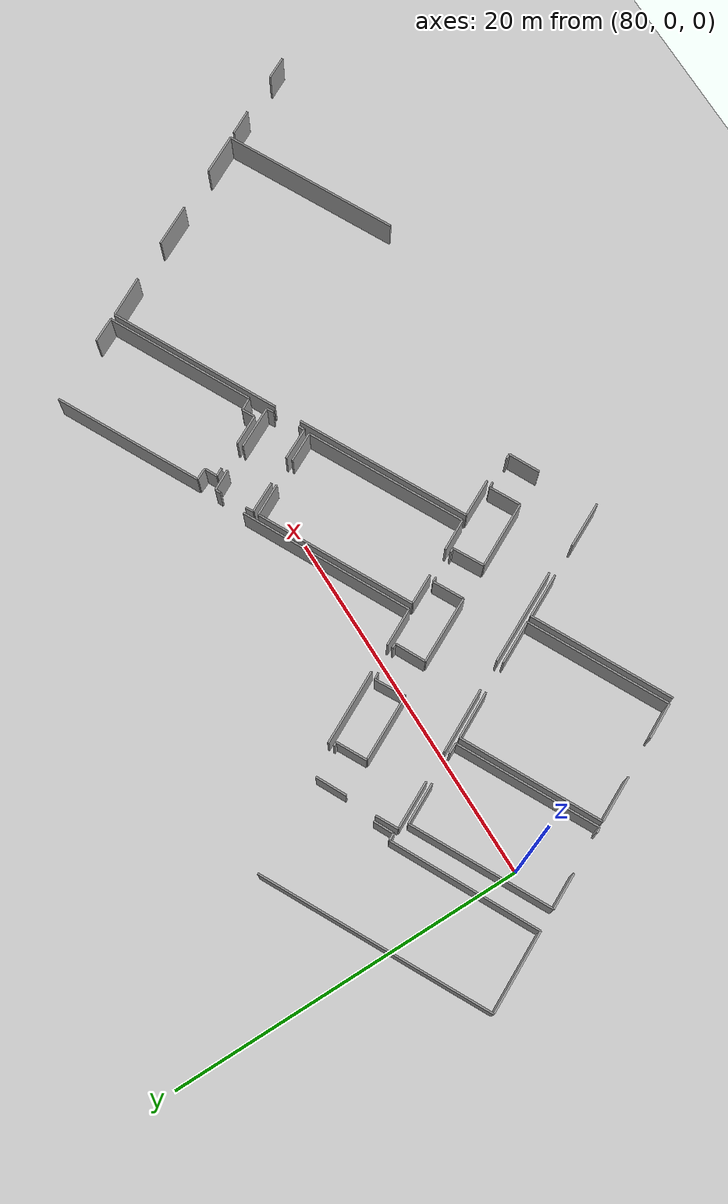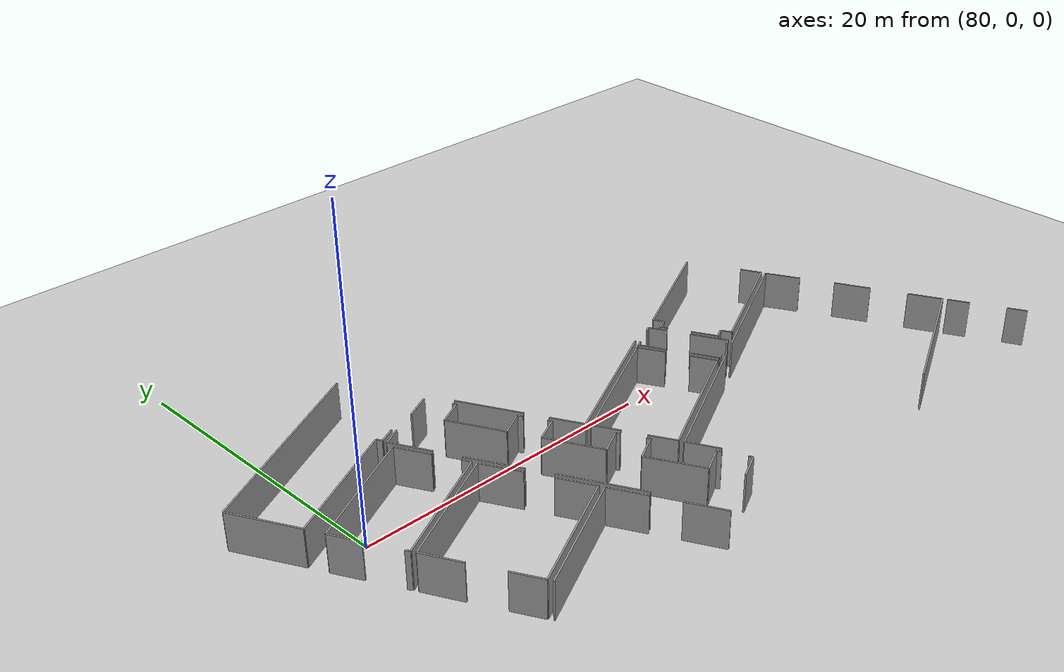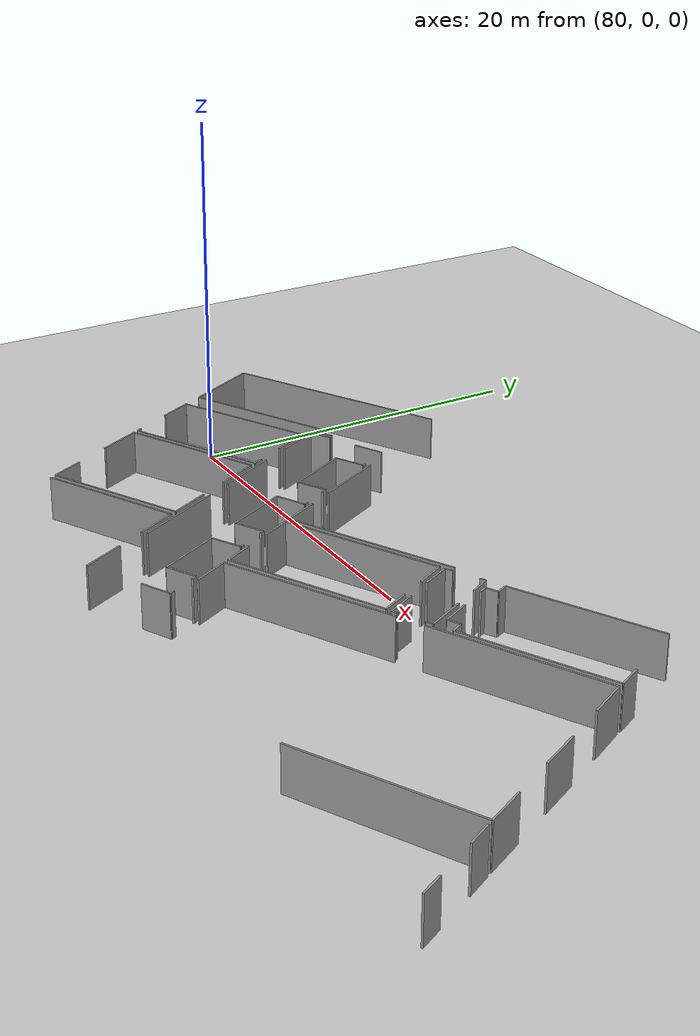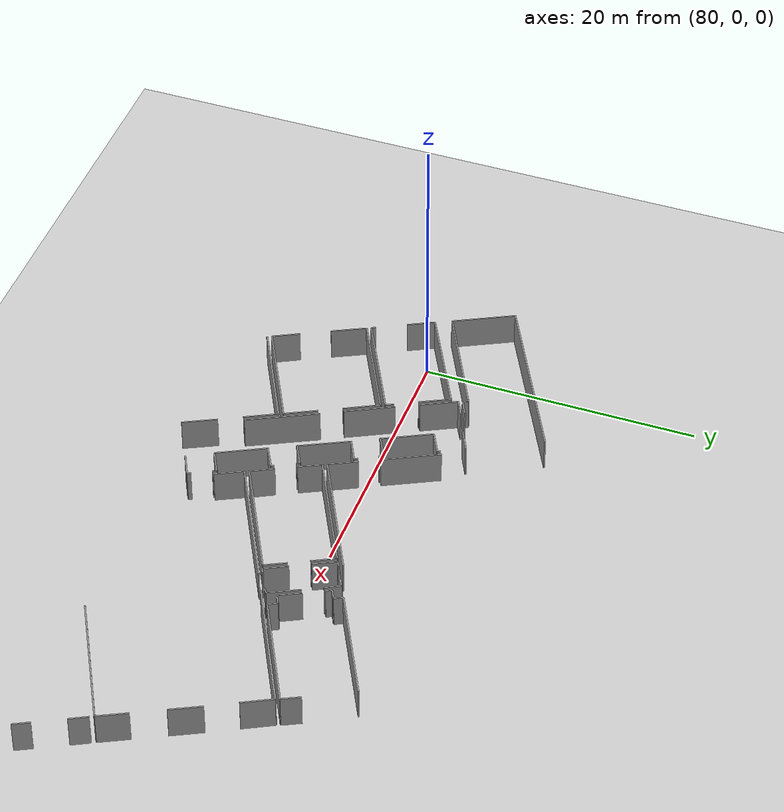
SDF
<sdf version="1.6">
 <world name="default">
  <model name="ground_plane">
   <static>1</static>
   <link name="link">
    <collision name="collision">
     <geometry><plane><normal>0 0 1</normal><size>100 100</size></plane></geometry>
     <surface><friction><ode><mu>100</mu><mu2>50</mu2></ode></friction></surface>
    </collision>
    <visual name="visual">
     <cast_shadows>0</cast_shadows>
     <geometry><plane><normal>0 0 1</normal><size>100 100</size></plane></geometry>
     <material>
      <script><uri>file://media/materials/scripts/gazebo.material</uri><name>Gazebo/Grey</name></script>
     </material>
    </visual>
   </link>
  </model>
  <model name="0510045926_A-40">
   <static>1</static>
   <link name="Wall_34">
    <collision name="Wall_34_Collision">
     <geometry><box><size>9.83773451522 0.1 2.5</size></box></geometry>
     <pose>4.91886725761 0 1.25 0 0 0</pose>
    </collision>
    <visual name="Wall_34_Visual">
     <pose>4.91886725761 0 1.25 0 0 0</pose>
     <geometry><box><size>9.83773451522 0.1 2.5</size></box></geometry>
     <material>
      <script><uri>file://media/materials/scripts/gazebo.material</uri><name>Gazebo/Grey</name></script>
      <ambient>1 1 1 1</ambient>
     </material>
    </visual>
    <pose>236.597120248 -99.109726303 0 0 0 -2.67278706077</pose>
   </link>
   <link name="Wall_35">
    <collision name="Wall_35_Collision">
     <geometry><box><size>2.17369419839 0.1 2.5</size></box></geometry>
     <pose>1.08684709919 0 1.25 0 0 0</pose>
    </collision>
    <visual name="Wall_35_Visual">
     <pose>1.08684709919 0 1.25 0 0 0</pose>
     <geometry><box><size>2.17369419839 0.1 2.5</size></box></geometry>
     <material>
      <script><uri>file://media/materials/scripts/gazebo.material</uri><name>Gazebo/Grey</name></script>
      <ambient>1 1 1 1</ambient>
     </material>
    </visual>
    <pose>227.820792852 -103.554622009 0 0 0 2.04102416253</pose>
   </link>
   <link name="Wall_36">
    <collision name="Wall_36_Collision">
     <geometry><box><size>4.23782411412 0.1 2.5</size></box></geometry>
     <pose>2.11891205706 0 1.25 0 0 0</pose>
    </collision>
    <visual name="Wall_36_Visual">
     <pose>2.11891205706 0 1.25 0 0 0</pose>
     <geometry><box><size>4.23782411412 0.1 2.5</size></box></geometry>
     <material>
      <script><uri>file://media/materials/scripts/gazebo.material</uri><name>Gazebo/Grey</name></script>
      <ambient>1 1 1 1</ambient>
     </material>
    </visual>
    <pose>226.132032009 -100.240812778 0 0 0 2.04039066594</pose>
   </link>
   <link name="Wall_38">
    <collision name="Wall_38_Collision">
     <geometry><box><size>8.47244996552 0.1 2.5</size></box></geometry>
     <pose>4.23622498276 0 1.25 0 0 0</pose>
    </collision>
    <visual name="Wall_38_Visual">
     <pose>4.23622498276 0 1.25 0 0 0</pose>
     <geometry><box><size>8.47244996552 0.1 2.5</size></box></geometry>
     <material>
      <script><uri>file://media/materials/scripts/gazebo.material</uri><name>Gazebo/Grey</name></script>
      <ambient>1 1 1 1</ambient>
     </material>
    </visual>
    <pose>239.384222917 -98.0519979947 0 0 0 0.471231240229</pose>
   </link>
   <link name="Wall_40">
    <collision name="Wall_40_Collision">
     <geometry><box><size>1.40966979622 0.1 2.5</size></box></geometry>
     <pose>0.704834898112 0 1.25 0 0 0</pose>
    </collision>
    <visual name="Wall_40_Visual">
     <pose>0.704834898112 0 1.25 0 0 0</pose>
     <geometry><box><size>1.40966979622 0.1 2.5</size></box></geometry>
     <material>
      <script><uri>file://media/materials/scripts/gazebo.material</uri><name>Gazebo/Grey</name></script>
      <ambient>1 1 1 1</ambient>
     </material>
    </visual>
    <pose>248.636489977 -97.4803627295 0 0 0 -1.10787347206</pose>
   </link>
   <link name="Wall_41">
    <collision name="Wall_41_Collision">
     <geometry><box><size>8.49312175297 0.1 2.5</size></box></geometry>
     <pose>4.24656087648 0 1.25 0 0 0</pose>
    </collision>
    <visual name="Wall_41_Visual">
     <pose>4.24656087648 0 1.25 0 0 0</pose>
     <geometry><box><size>8.49312175297 0.1 2.5</size></box></geometry>
     <material>
      <script><uri>file://media/materials/scripts/gazebo.material</uri><name>Gazebo/Grey</name></script>
      <ambient>1 1 1 1</ambient>
     </material>
    </visual>
    <pose>249.265999505 -98.7416662965 0 0 0 -2.67217094281</pose>
   </link>
   <link name="Wall_42">
    <collision name="Wall_42_Collision">
     <geometry><box><size>0.716394901711 0.1 2.5</size></box></geometry>
     <pose>0.358197450855 0 1.25 0 0 0</pose>
    </collision>
    <visual name="Wall_42_Visual">
     <pose>0.358197450855 0 1.25 0 0 0</pose>
     <geometry><box><size>0.716394901711 0.1 2.5</size></box></geometry>
     <material>
      <script><uri>file://media/materials/scripts/gazebo.material</uri><name>Gazebo/Grey</name></script>
      <ambient>1 1 1 1</ambient>
     </material>
    </visual>
    <pose>241.691578406 -102.583705095 0 0 0 2.07359296833</pose>
   </link>
   <link name="Wall_43">
    <collision name="Wall_43_Collision">
     <geometry><box><size>0.722833492446 0.1 2.5</size></box></geometry>
     <pose>0.361416746223 0 1.25 0 0 0</pose>
    </collision>
    <visual name="Wall_43_Visual">
     <pose>0.361416746223 0 1.25 0 0 0</pose>
     <geometry><box><size>0.722833492446 0.1 2.5</size></box></geometry>
     <material>
      <script><uri>file://media/materials/scripts/gazebo.material</uri><name>Gazebo/Grey</name></script>
      <ambient>1 1 1 1</ambient>
     </material>
    </visual>
    <pose>241.346363504 -101.955972408 0 0 0 -2.66475278341</pose>
   </link>
   <link name="Wall_44">
    <collision name="Wall_44_Collision">
     <geometry><box><size>1.71059654186 0.1 2.5</size></box></geometry>
     <pose>0.855298270928 0 1.25 0 0 0</pose>
    </collision>
    <visual name="Wall_44_Visual">
     <pose>0.855298270928 0 1.25 0 0 0</pose>
     <geometry><box><size>1.71059654186 0.1 2.5</size></box></geometry>
     <material>
      <script><uri>file://media/materials/scripts/gazebo.material</uri><name>Gazebo/Grey</name></script>
      <ambient>1 1 1 1</ambient>
     </material>
    </visual>
    <pose>240.704162251 -102.287734083 0 0 0 2.04546021432</pose>
   </link>
   <link name="Wall_45">
    <collision name="Wall_45_Collision">
     <geometry><box><size>0.469220516301 0.1 2.5</size></box></geometry>
     <pose>0.234610258151 0 1.25 0 0 0</pose>
    </collision>
    <visual name="Wall_45_Visual">
     <pose>0.234610258151 0 1.25 0 0 0</pose>
     <geometry><box><size>0.469220516301 0.1 2.5</size></box></geometry>
     <material>
      <script><uri>file://media/materials/scripts/gazebo.material</uri><name>Gazebo/Grey</name></script>
      <ambient>1 1 1 1</ambient>
     </material>
    </visual>
    <pose>239.22938388 -99.4008744598 0 0 0 2.06081729664</pose>
   </link>
   <link name="Wall_46">
    <collision name="Wall_46_Collision">
     <geometry><box><size>0.734011743152 0.1 2.5</size></box></geometry>
     <pose>0.367005871576 0 1.25 0 0 0</pose>
    </collision>
    <visual name="Wall_46_Visual">
     <pose>0.367005871576 0 1.25 0 0 0</pose>
     <geometry><box><size>0.734011743152 0.1 2.5</size></box></geometry>
     <material>
      <script><uri>file://media/materials/scripts/gazebo.material</uri><name>Gazebo/Grey</name></script>
      <ambient>1 1 1 1</ambient>
     </material>
    </visual>
    <pose>239.008547876 -98.9868704111 0 0 0 0.460863824048</pose>
   </link>
   <link name="Wall_47">
    <collision name="Wall_47_Collision">
     <geometry><box><size>0.670512770793 0.1 2.5</size></box></geometry>
     <pose>0.335256385397 0 1.25 0 0 0</pose>
    </collision>
    <visual name="Wall_47_Visual">
     <pose>0.335256385397 0 1.25 0 0 0</pose>
     <geometry><box><size>0.670512770793 0.1 2.5</size></box></geometry>
     <material>
      <script><uri>file://media/materials/scripts/gazebo.material</uri><name>Gazebo/Grey</name></script>
      <ambient>1 1 1 1</ambient>
     </material>
    </visual>
    <pose>239.665979198 -98.6604392606 0 0 0 2.00447323788</pose>
   </link>
   <link name="Wall_48">
    <collision name="Wall_48_Collision">
     <geometry><box><size>9.14189428789 0.1 2.5</size></box></geometry>
     <pose>4.57094714394 0 1.25 0 0 0</pose>
    </collision>
    <visual name="Wall_48_Visual">
     <pose>4.57094714394 0 1.25 0 0 0</pose>
     <geometry><box><size>9.14189428789 0.1 2.5</size></box></geometry>
     <material>
      <script><uri>file://media/materials/scripts/gazebo.material</uri><name>Gazebo/Grey</name></script>
      <ambient>1 1 1 1</ambient>
     </material>
    </visual>
    <pose>227.974870386 -103.85846189 0 0 0 0.471346451052</pose>
   </link>
   <link name="Wall_49">
    <collision name="Wall_49_Collision">
     <geometry><box><size>1.81399217768 0.1 2.5</size></box></geometry>
     <pose>0.906996088841 0 1.25 0 0 0</pose>
    </collision>
    <visual name="Wall_49_Visual">
     <pose>0.906996088841 0 1.25 0 0 0</pose>
     <geometry><box><size>1.81399217768 0.1 2.5</size></box></geometry>
     <material>
      <script><uri>file://media/materials/scripts/gazebo.material</uri><name>Gazebo/Grey</name></script>
      <ambient>1 1 1 1</ambient>
     </material>
    </visual>
    <pose>236.119911412 -99.7072526859 0 0 0 -1.09237948259</pose>
   </link>
   <link name="Wall_50">
    <collision name="Wall_50_Collision">
     <geometry><box><size>1.68029689895 0.1 2.5</size></box></geometry>
     <pose>0.840148449477 0 1.25 0 0 0</pose>
    </collision>
    <visual name="Wall_50_Visual">
     <pose>0.840148449477 0 1.25 0 0 0</pose>
     <geometry><box><size>1.68029689895 0.1 2.5</size></box></geometry>
     <material>
      <script><uri>file://media/materials/scripts/gazebo.material</uri><name>Gazebo/Grey</name></script>
      <ambient>1 1 1 1</ambient>
     </material>
    </visual>
    <pose>237.647995025 -102.697930614 0 0 0 -1.10721627623</pose>
   </link>
   <link name="Wall_51">
    <collision name="Wall_51_Collision">
     <geometry><box><size>9.12429454102 0.1 2.5</size></box></geometry>
     <pose>4.56214727051 0 1.25 0 0 0</pose>
    </collision>
    <visual name="Wall_51_Visual">
     <pose>4.56214727051 0 1.25 0 0 0</pose>
     <geometry><box><size>9.12429454102 0.1 2.5</size></box></geometry>
     <material>
      <script><uri>file://media/materials/scripts/gazebo.material</uri><name>Gazebo/Grey</name></script>
      <ambient>1 1 1 1</ambient>
     </material>
    </visual>
    <pose>238.399345107 -104.200884613 0 0 0 -2.66754391669</pose>
   </link>
   <link name="Wall_52">
    <collision name="Wall_52_Collision">
     <geometry><box><size>1.77359968853 0.1 2.5</size></box></geometry>
     <pose>0.886799844267 0 1.25 0 0 0</pose>
    </collision>
    <visual name="Wall_52_Visual">
     <pose>0.886799844267 0 1.25 0 0 0</pose>
     <geometry><box><size>1.77359968853 0.1 2.5</size></box></geometry>
     <material>
      <script><uri>file://media/materials/scripts/gazebo.material</uri><name>Gazebo/Grey</name></script>
      <ambient>1 1 1 1</ambient>
     </material>
    </visual>
    <pose>230.281210537 -108.366054714 0 0 0 2.05377447692</pose>
   </link>
   <link name="Wall_53">
    <collision name="Wall_53_Collision">
     <geometry><box><size>1.72831520117 0.1 2.5</size></box></geometry>
     <pose>0.864157600586 0 1.25 0 0 0</pose>
    </collision>
    <visual name="Wall_53_Visual">
     <pose>0.864157600586 0 1.25 0 0 0</pose>
     <geometry><box><size>1.72831520117 0.1 2.5</size></box></geometry>
     <material>
      <script><uri>file://media/materials/scripts/gazebo.material</uri><name>Gazebo/Grey</name></script>
      <ambient>1 1 1 1</ambient>
     </material>
    </visual>
    <pose>228.748304068 -105.404060083 0 0 0 2.03477234301</pose>
   </link>
   <link name="Wall_54">
    <collision name="Wall_54_Collision">
     <geometry><box><size>1.78814858928 0.1 2.5</size></box></geometry>
     <pose>0.894074294638 0 1.25 0 0 0</pose>
    </collision>
    <visual name="Wall_54_Visual">
     <pose>0.894074294638 0 1.25 0 0 0</pose>
     <geometry><box><size>1.78814858928 0.1 2.5</size></box></geometry>
     <material>
      <script><uri>file://media/materials/scripts/gazebo.material</uri><name>Gazebo/Grey</name></script>
      <ambient>1 1 1 1</ambient>
     </material>
    </visual>
    <pose>238.706484837 -104.09605097 0 0 0 2.03120626301</pose>
   </link>
   <link name="Wall_55">
    <collision name="Wall_55_Collision">
     <geometry><box><size>1.75727774892 0.1 2.5</size></box></geometry>
     <pose>0.87863887446 0 1.25 0 0 0</pose>
    </collision>
    <visual name="Wall_55_Visual">
     <pose>0.87863887446 0 1.25 0 0 0</pose>
     <geometry><box><size>1.75727774892 0.1 2.5</size></box></geometry>
     <material>
      <script><uri>file://media/materials/scripts/gazebo.material</uri><name>Gazebo/Grey</name></script>
      <ambient>1 1 1 1</ambient>
     </material>
    </visual>
    <pose>237.183477913 -101.153855429 0 0 0 2.03024499406</pose>
   </link>
   <link name="Wall_56">
    <collision name="Wall_56_Collision">
     <geometry><box><size>0.436196674914 0.1 2.5</size></box></geometry>
     <pose>0.218098337457 0 1.25 0 0 0</pose>
    </collision>
    <visual name="Wall_56_Visual">
     <pose>0.218098337457 0 1.25 0 0 0</pose>
     <geometry><box><size>0.436196674914 0.1 2.5</size></box></geometry>
     <material>
      <script><uri>file://media/materials/scripts/gazebo.material</uri><name>Gazebo/Grey</name></script>
      <ambient>1 1 1 1</ambient>
     </material>
    </visual>
    <pose>236.404206037 -99.5788124354 0 0 0 0.544411495033</pose>
   </link>
   <link name="Wall_57">
    <collision name="Wall_57_Collision">
     <geometry><box><size>0.32457521192 0.1 2.5</size></box></geometry>
     <pose>0.16228760596 0 1.25 0 0 0</pose>
    </collision>
    <visual name="Wall_57_Visual">
     <pose>0.16228760596 0 1.25 0 0 0</pose>
     <geometry><box><size>0.32457521192 0.1 2.5</size></box></geometry>
     <material>
      <script><uri>file://media/materials/scripts/gazebo.material</uri><name>Gazebo/Grey</name></script>
      <ambient>1 1 1 1</ambient>
     </material>
    </visual>
    <pose>238.122665516 -98.6784615092 0 0 0 0.434264885081</pose>
   </link>
   <link name="Wall_58">
    <collision name="Wall_58_Collision">
     <geometry><box><size>1.1998915964 0.1 2.5</size></box></geometry>
     <pose>0.599945798202 0 1.25 0 0 0</pose>
    </collision>
    <visual name="Wall_58_Visual">
     <pose>0.599945798202 0 1.25 0 0 0</pose>
     <geometry><box><size>1.1998915964 0.1 2.5</size></box></geometry>
     <material>
      <script><uri>file://media/materials/scripts/gazebo.material</uri><name>Gazebo/Grey</name></script>
      <ambient>1 1 1 1</ambient>
     </material>
    </visual>
    <pose>238.417113521 -98.541898555 0 0 0 -1.0795199371</pose>
   </link>
   <link name="Wall_59">
    <collision name="Wall_59_Collision">
     <geometry><box><size>2.37911633606 0.1 2.5</size></box></geometry>
     <pose>1.18955816803 0 1.25 0 0 0</pose>
    </collision>
    <visual name="Wall_59_Visual">
     <pose>1.18955816803 0 1.25 0 0 0</pose>
     <geometry><box><size>2.37911633606 0.1 2.5</size></box></geometry>
     <material>
      <script><uri>file://media/materials/scripts/gazebo.material</uri><name>Gazebo/Grey</name></script>
      <ambient>1 1 1 1</ambient>
     </material>
    </visual>
    <pose>239.655825819 -100.932004087 0 0 0 -1.10614671412</pose>
   </link>
   <link name="Wall_60">
    <collision name="Wall_60_Collision">
     <geometry><box><size>0.398241638076 0.1 2.5</size></box></geometry>
     <pose>0.199120819038 0 1.25 0 0 0</pose>
    </collision>
    <visual name="Wall_60_Visual">
     <pose>0.199120819038 0 1.25 0 0 0</pose>
     <geometry><box><size>0.398241638076 0.1 2.5</size></box></geometry>
     <material>
      <script><uri>file://media/materials/scripts/gazebo.material</uri><name>Gazebo/Grey</name></script>
      <ambient>1 1 1 1</ambient>
     </material>
    </visual>
    <pose>240.721930665 -103.058883255 0 0 0 -2.5946144367</pose>
   </link>
   <link name="Wall_61">
    <collision name="Wall_61_Collision">
     <geometry><box><size>0.351402747105 0.1 2.5</size></box></geometry>
     <pose>0.175701373552 0 1.25 0 0 0</pose>
    </collision>
    <visual name="Wall_61_Visual">
     <pose>0.175701373552 0 1.25 0 0 0</pose>
     <geometry><box><size>0.351402747105 0.1 2.5</size></box></geometry>
     <material>
      <script><uri>file://media/materials/scripts/gazebo.material</uri><name>Gazebo/Grey</name></script>
      <ambient>1 1 1 1</ambient>
     </material>
    </visual>
    <pose>239.028854635 -103.956188168 0 0 0 -2.73224296266</pose>
   </link>
   <link name="Wall_62">
    <collision name="Wall_62_Collision">
     <geometry><box><size>9.90446214261 0.1 2.5</size></box></geometry>
     <pose>4.95223107131 0 1.25 0 0 0</pose>
    </collision>
    <visual name="Wall_62_Visual">
     <pose>4.95223107131 0 1.25 0 0 0</pose>
     <geometry><box><size>9.90446214261 0.1 2.5</size></box></geometry>
     <material>
      <script><uri>file://media/materials/scripts/gazebo.material</uri><name>Gazebo/Grey</name></script>
      <ambient>1 1 1 1</ambient>
     </material>
    </visual>
    <pose>230.410666125 -108.676494292 0 0 0 0.473183573752</pose>
   </link>
   <link name="Wall_63">
    <collision name="Wall_63_Collision">
     <geometry><box><size>9.84067283342 0.1 2.5</size></box></geometry>
     <pose>4.92033641671 0 1.25 0 0 0</pose>
    </collision>
    <visual name="Wall_63_Visual">
     <pose>4.92033641671 0 1.25 0 0 0</pose>
     <geometry><box><size>9.84067283342 0.1 2.5</size></box></geometry>
     <material>
      <script><uri>file://media/materials/scripts/gazebo.material</uri><name>Gazebo/Grey</name></script>
      <ambient>1 1 1 1</ambient>
     </material>
    </visual>
    <pose>240.592475077 -103.473902642 0 0 0 0.468538730148</pose>
   </link>
   <link name="Wall_64">
    <collision name="Wall_64_Collision">
     <geometry><box><size>2.31981414035 0.1 2.5</size></box></geometry>
     <pose>1.15990707017 0 1.25 0 0 0</pose>
    </collision>
    <visual name="Wall_64_Visual">
     <pose>1.15990707017 0 1.25 0 0 0</pose>
     <geometry><box><size>2.31981414035 0.1 2.5</size></box></geometry>
     <material>
      <script><uri>file://media/materials/scripts/gazebo.material</uri><name>Gazebo/Grey</name></script>
      <ambient>1 1 1 1</ambient>
     </material>
    </visual>
    <pose>249.37260999 -99.030022274 0 0 0 -1.08835688156</pose>
   </link>
   <link name="Wall_65">
    <collision name="Wall_65_Collision">
     <geometry><box><size>2.37503261162 0.1 2.5</size></box></geometry>
     <pose>1.18751630581 0 1.25 0 0 0</pose>
    </collision>
    <visual name="Wall_65_Visual">
     <pose>1.18751630581 0 1.25 0 0 0</pose>
     <geometry><box><size>2.37503261162 0.1 2.5</size></box></geometry>
     <material>
      <script><uri>file://media/materials/scripts/gazebo.material</uri><name>Gazebo/Grey</name></script>
      <ambient>1 1 1 1</ambient>
     </material>
    </visual>
    <pose>251.517511407 -103.118788194 0 0 0 -1.10528465342</pose>
   </link>
   <link name="Wall_66">
    <collision name="Wall_66_Collision">
     <geometry><box><size>2.24947814664 0.1 2.5</size></box></geometry>
     <pose>1.12473907332 0 1.25 0 0 0</pose>
    </collision>
    <visual name="Wall_66_Visual">
     <pose>1.12473907332 0 1.25 0 0 0</pose>
     <geometry><box><size>2.24947814664 0.1 2.5</size></box></geometry>
     <material>
      <script><uri>file://media/materials/scripts/gazebo.material</uri><name>Gazebo/Grey</name></script>
      <ambient>1 1 1 1</ambient>
     </material>
    </visual>
    <pose>253.672566203 -107.397676145 0 0 0 -1.10629082539</pose>
   </link>
   <link name="Wall_67">
    <collision name="Wall_67_Collision">
     <geometry><box><size>9.91867469902 0.1 2.5</size></box></geometry>
     <pose>4.95933734951 0 1.25 0 0 0</pose>
    </collision>
    <visual name="Wall_67_Visual">
     <pose>4.95933734951 0 1.25 0 0 0</pose>
     <geometry><box><size>9.91867469902 0.1 2.5</size></box></geometry>
     <material>
      <script><uri>file://media/materials/scripts/gazebo.material</uri><name>Gazebo/Grey</name></script>
      <ambient>1 1 1 1</ambient>
     </material>
    </visual>
    <pose>254.680289117 -109.408806788 0 0 0 -2.66942993657</pose>
   </link>
   <link name="Wall_71">
    <collision name="Wall_71_Collision">
     <geometry><box><size>2.12699288955 0.1 2.5</size></box></geometry>
     <pose>1.06349644477 0 1.25 0 0 0</pose>
    </collision>
    <visual name="Wall_71_Visual">
     <pose>1.06349644477 0 1.25 0 0 0</pose>
     <geometry><box><size>2.12699288955 0.1 2.5</size></box></geometry>
     <material>
      <script><uri>file://media/materials/scripts/gazebo.material</uri><name>Gazebo/Grey</name></script>
      <ambient>1 1 1 1</ambient>
     </material>
    </visual>
    <pose>231.364322294 -110.577714601 0 0 0 2.03572482318</pose>
   </link>
   <link name="Wall_73">
    <collision name="Wall_73_Collision">
     <geometry><box><size>1.41280884855 0.1 2.5</size></box></geometry>
     <pose>0.706404424275 0 1.25 0 0 0</pose>
    </collision>
    <visual name="Wall_73_Visual">
     <pose>0.706404424275 0 1.25 0 0 0</pose>
     <geometry><box><size>1.41280884855 0.1 2.5</size></box></geometry>
     <material>
      <script><uri>file://media/materials/scripts/gazebo.material</uri><name>Gazebo/Grey</name></script>
      <ambient>1 1 1 1</ambient>
     </material>
    </visual>
    <pose>254.82751312 -109.692593744 0 0 0 -1.09083708201</pose>
   </link>
   <link name="Wall_74">
    <collision name="Wall_74_Collision">
     <geometry><box><size>1.28732880304 0.1 2.5</size></box></geometry>
     <pose>0.64366440152 0 1.25 0 0 0</pose>
    </collision>
    <visual name="Wall_74_Visual">
     <pose>0.64366440152 0 1.25 0 0 0</pose>
     <geometry><box><size>1.28732880304 0.1 2.5</size></box></geometry>
     <material>
      <script><uri>file://media/materials/scripts/gazebo.material</uri><name>Gazebo/Grey</name></script>
      <ambient>1 1 1 1</ambient>
     </material>
    </visual>
    <pose>256.543434254 -113.024425224 0 0 0 -1.1000941611</pose>
   </link>
   <link name="Wall_150">
    <collision name="Wall_150_Collision">
     <geometry><box><size>13.34827038 0.1 2.5</size></box></geometry>
     <pose>6.67413518998 0 1.25 0 0 0</pose>
    </collision>
    <visual name="Wall_150_Visual">
     <pose>6.67413518998 0 1.25 0 0 0</pose>
     <geometry><box><size>13.34827038 0.1 2.5</size></box></geometry>
     <material>
      <script><uri>file://media/materials/scripts/gazebo.material</uri><name>Gazebo/Grey</name></script>
      <ambient>1 1 1 1</ambient>
     </material>
    </visual>
    <pose>208.724824378 -96.2106826244 0 0 0 0.475324333573</pose>
   </link>
   <link name="Wall_155">
    <collision name="Wall_155_Collision">
     <geometry><box><size>1.14884504645 0.1 2.5</size></box></geometry>
     <pose>0.574422523226 0 1.25 0 0 0</pose>
    </collision>
    <visual name="Wall_155_Visual">
     <pose>0.574422523226 0 1.25 0 0 0</pose>
     <geometry><box><size>1.14884504645 0.1 2.5</size></box></geometry>
     <material>
      <script><uri>file://media/materials/scripts/gazebo.material</uri><name>Gazebo/Grey</name></script>
      <ambient>1 1 1 1</ambient>
     </material>
    </visual>
    <pose>219.714080834 -96.2987631915 0 0 0 -2.68634405657</pose>
   </link>
   <link name="Wall_156">
    <collision name="Wall_156_Collision">
     <geometry><box><size>0.403330300285 0.1 2.5</size></box></geometry>
     <pose>0.201665150143 0 1.25 0 0 0</pose>
    </collision>
    <visual name="Wall_156_Visual">
     <pose>0.201665150143 0 1.25 0 0 0</pose>
     <geometry><box><size>0.403330300285 0.1 2.5</size></box></geometry>
     <material>
      <script><uri>file://media/materials/scripts/gazebo.material</uri><name>Gazebo/Grey</name></script>
      <ambient>1 1 1 1</ambient>
     </material>
    </visual>
    <pose>218.682243643 -96.803893821 0 0 0 2.03472538808</pose>
   </link>
   <link name="Wall_157">
    <collision name="Wall_157_Collision">
     <geometry><box><size>8.60506984182 0.1 2.5</size></box></geometry>
     <pose>4.30253492091 0 1.25 0 0 0</pose>
    </collision>
    <visual name="Wall_157_Visual">
     <pose>4.30253492091 0 1.25 0 0 0</pose>
     <geometry><box><size>8.60506984182 0.1 2.5</size></box></geometry>
     <material>
      <script><uri>file://media/materials/scripts/gazebo.material</uri><name>Gazebo/Grey</name></script>
      <ambient>1 1 1 1</ambient>
     </material>
    </visual>
    <pose>218.501767323 -96.4431950147 0 0 0 -2.67463384209</pose>
   </link>
   <link name="Wall_158">
    <collision name="Wall_158_Collision">
     <geometry><box><size>4.60897900316 0.1 2.5</size></box></geometry>
     <pose>2.30448950158 0 1.25 0 0 0</pose>
    </collision>
    <visual name="Wall_158_Visual">
     <pose>2.30448950158 0 1.25 0 0 0</pose>
     <geometry><box><size>4.60897900316 0.1 2.5</size></box></geometry>
     <material>
      <script><uri>file://media/materials/scripts/gazebo.material</uri><name>Gazebo/Grey</name></script>
      <ambient>1 1 1 1</ambient>
     </material>
    </visual>
    <pose>210.81794356 -100.316963124 0 0 0 2.04220240081</pose>
   </link>
   <link name="Wall_159">
    <collision name="Wall_159_Collision">
     <geometry><box><size>8.23695820155 0.1 2.5</size></box></geometry>
     <pose>4.11847910078 0 1.25 0 0 0</pose>
    </collision>
    <visual name="Wall_159_Visual">
     <pose>4.11847910078 0 1.25 0 0 0</pose>
     <geometry><box><size>8.23695820155 0.1 2.5</size></box></geometry>
     <material>
      <script><uri>file://media/materials/scripts/gazebo.material</uri><name>Gazebo/Grey</name></script>
      <ambient>1 1 1 1</ambient>
     </material>
    </visual>
    <pose>211.365464549 -101.439419227 0 0 0 0.473694544117</pose>
   </link>
   <link name="Wall_160">
    <collision name="Wall_160_Collision">
     <geometry><box><size>2.31628292386 0.1 2.5</size></box></geometry>
     <pose>1.15814146193 0 1.25 0 0 0</pose>
    </collision>
    <visual name="Wall_160_Visual">
     <pose>1.15814146193 0 1.25 0 0 0</pose>
     <geometry><box><size>2.31628292386 0.1 2.5</size></box></geometry>
     <material>
      <script><uri>file://media/materials/scripts/gazebo.material</uri><name>Gazebo/Grey</name></script>
      <ambient>1 1 1 1</ambient>
     </material>
    </visual>
    <pose>218.695443036 -97.6819073123 0 0 0 -1.10014040282</pose>
   </link>
   <link name="Wall_161">
    <collision name="Wall_161_Collision">
     <geometry><box><size>0.592872599715 0.1 2.5</size></box></geometry>
     <pose>0.296436299858 0 1.25 0 0 0</pose>
    </collision>
    <visual name="Wall_161_Visual">
     <pose>0.296436299858 0 1.25 0 0 0</pose>
     <geometry><box><size>0.592872599715 0.1 2.5</size></box></geometry>
     <material>
      <script><uri>file://media/materials/scripts/gazebo.material</uri><name>Gazebo/Grey</name></script>
      <ambient>1 1 1 1</ambient>
     </material>
    </visual>
    <pose>220.547927124 -101.301333266 0 0 0 -1.12361601505</pose>
   </link>
   <link name="Wall_162">
    <collision name="Wall_162_Collision">
     <geometry><box><size>8.19861379299 0.1 2.5</size></box></geometry>
     <pose>4.09930689649 0 1.25 0 0 0</pose>
    </collision>
    <visual name="Wall_162_Visual">
     <pose>4.09930689649 0 1.25 0 0 0</pose>
     <geometry><box><size>8.19861379299 0.1 2.5</size></box></geometry>
     <material>
      <script><uri>file://media/materials/scripts/gazebo.material</uri><name>Gazebo/Grey</name></script>
      <ambient>1 1 1 1</ambient>
     </material>
    </visual>
    <pose>220.804299956 -101.835908696 0 0 0 -2.669014238</pose>
   </link>
   <link name="Wall_163">
    <collision name="Wall_163_Collision">
     <geometry><box><size>0.31928231722 0.1 2.5</size></box></geometry>
     <pose>0.15964115861 0 1.25 0 0 0</pose>
    </collision>
    <visual name="Wall_163_Visual">
     <pose>0.15964115861 0 1.25 0 0 0</pose>
     <geometry><box><size>0.31928231722 0.1 2.5</size></box></geometry>
     <material>
      <script><uri>file://media/materials/scripts/gazebo.material</uri><name>Gazebo/Grey</name></script>
      <ambient>1 1 1 1</ambient>
     </material>
    </visual>
    <pose>213.504273938 -105.567783327 0 0 0 2.14953789412</pose>
   </link>
   <link name="Wall_164">
    <collision name="Wall_164_Collision">
     <geometry><box><size>2.02020700226 0.1 2.5</size></box></geometry>
     <pose>1.01010350113 0 1.25 0 0 0</pose>
    </collision>
    <visual name="Wall_164_Visual">
     <pose>1.01010350113 0 1.25 0 0 0</pose>
     <geometry><box><size>2.02020700226 0.1 2.5</size></box></geometry>
     <material>
      <script><uri>file://media/materials/scripts/gazebo.material</uri><name>Gazebo/Grey</name></script>
      <ambient>1 1 1 1</ambient>
     </material>
    </visual>
    <pose>212.279776372 -103.240882583 0 0 0 2.04045645044</pose>
   </link>
   <link name="Wall_165">
    <collision name="Wall_165_Collision">
     <geometry><box><size>8.179131028 0.1 2.5</size></box></geometry>
     <pose>4.089565514 0 1.25 0 0 0</pose>
    </collision>
    <visual name="Wall_165_Visual">
     <pose>4.089565514 0 1.25 0 0 0</pose>
     <geometry><box><size>8.179131028 0.1 2.5</size></box></geometry>
     <material>
      <script><uri>file://media/materials/scripts/gazebo.material</uri><name>Gazebo/Grey</name></script>
      <ambient>1 1 1 1</ambient>
     </material>
    </visual>
    <pose>213.640836892 -105.851824118 0 0 0 0.46954622206</pose>
   </link>
   <link name="Wall_166">
    <collision name="Wall_166_Collision">
     <geometry><box><size>2.66313564546 0.1 2.5</size></box></geometry>
     <pose>1.33156782273 0 1.25 0 0 0</pose>
    </collision>
    <visual name="Wall_166_Visual">
     <pose>1.33156782273 0 1.25 0 0 0</pose>
     <geometry><box><size>2.66313564546 0.1 2.5</size></box></geometry>
     <material>
      <script><uri>file://media/materials/scripts/gazebo.material</uri><name>Gazebo/Grey</name></script>
      <ambient>1 1 1 1</ambient>
     </material>
    </visual>
    <pose>220.934770883 -102.150917294 0 0 0 -1.09120600078</pose>
   </link>
   <link name="Wall_167">
    <collision name="Wall_167_Collision">
     <geometry><box><size>2.46228611412 0.1 2.5</size></box></geometry>
     <pose>1.23114305706 0 1.25 0 0 0</pose>
    </collision>
    <visual name="Wall_167_Visual">
     <pose>1.23114305706 0 1.25 0 0 0</pose>
     <geometry><box><size>2.46228611412 0.1 2.5</size></box></geometry>
     <material>
      <script><uri>file://media/materials/scripts/gazebo.material</uri><name>Gazebo/Grey</name></script>
      <ambient>1 1 1 1</ambient>
     </material>
    </visual>
    <pose>222.953770394 -106.061491405 0 0 0 -1.09931116505</pose>
   </link>
   <link name="Wall_168">
    <collision name="Wall_168_Collision">
     <geometry><box><size>8.1973216122 0.1 2.5</size></box></geometry>
     <pose>4.0986608061 0 1.25 0 0 0</pose>
    </collision>
    <visual name="Wall_168_Visual">
     <pose>4.0986608061 0 1.25 0 0 0</pose>
     <geometry><box><size>8.1973216122 0.1 2.5</size></box></geometry>
     <material>
      <script><uri>file://media/materials/scripts/gazebo.material</uri><name>Gazebo/Grey</name></script>
      <ambient>1 1 1 1</ambient>
     </material>
    </visual>
    <pose>224.072165145 -108.255129043 0 0 0 -2.67150558229</pose>
   </link>
   <link name="Wall_169">
    <collision name="Wall_169_Collision">
     <geometry><box><size>2.02594788236 0.1 2.5</size></box></geometry>
     <pose>1.01297394118 0 1.25 0 0 0</pose>
    </collision>
    <visual name="Wall_169_Visual">
     <pose>1.01297394118 0 1.25 0 0 0</pose>
     <geometry><box><size>2.02594788236 0.1 2.5</size></box></geometry>
     <material>
      <script><uri>file://media/materials/scripts/gazebo.material</uri><name>Gazebo/Grey</name></script>
      <ambient>1 1 1 1</ambient>
     </material>
    </visual>
    <pose>216.764016423 -111.968219922 0 0 0 2.04901281249</pose>
   </link>
   <link name="Wall_170">
    <collision name="Wall_170_Collision">
     <geometry><box><size>2.59979507379 0.1 2.5</size></box></geometry>
     <pose>1.29989753689 0 1.25 0 0 0</pose>
    </collision>
    <visual name="Wall_170_Visual">
     <pose>1.29989753689 0 1.25 0 0 0</pose>
     <geometry><box><size>2.59979507379 0.1 2.5</size></box></geometry>
     <material>
      <script><uri>file://media/materials/scripts/gazebo.material</uri><name>Gazebo/Grey</name></script>
      <ambient>1 1 1 1</ambient>
     </material>
    </visual>
    <pose>214.804921851 -108.176440352 0 0 0 2.03505523604</pose>
   </link>
   <link name="Wall_171">
    <collision name="Wall_171_Collision">
     <geometry><box><size>8.21642849547 0.1 2.5</size></box></geometry>
     <pose>4.10821424773 0 1.25 0 0 0</pose>
    </collision>
    <visual name="Wall_171_Visual">
     <pose>4.10821424773 0 1.25 0 0 0</pose>
     <geometry><box><size>8.21642849547 0.1 2.5</size></box></geometry>
     <material>
      <script><uri>file://media/materials/scripts/gazebo.material</uri><name>Gazebo/Grey</name></script>
      <ambient>1 1 1 1</ambient>
     </material>
    </visual>
    <pose>216.894741184 -112.283482355 0 0 0 0.468386517142</pose>
   </link>
   <link name="Wall_172">
    <collision name="Wall_172_Collision">
     <geometry><box><size>2.46691375857 0.1 2.5</size></box></geometry>
     <pose>1.23345687928 0 1.25 0 0 0</pose>
    </collision>
    <visual name="Wall_172_Visual">
     <pose>1.23345687928 0 1.25 0 0 0</pose>
     <geometry><box><size>2.46691375857 0.1 2.5</size></box></geometry>
     <material>
      <script><uri>file://media/materials/scripts/gazebo.material</uri><name>Gazebo/Grey</name></script>
      <ambient>1 1 1 1</ambient>
     </material>
    </visual>
    <pose>224.226242678 -108.574198994 0 0 0 -1.10084444348</pose>
   </link>
   <link name="Wall_173">
    <collision name="Wall_173_Collision">
     <geometry><box><size>2.55995005044 0.1 2.5</size></box></geometry>
     <pose>1.27997502522 0 1.25 0 0 0</pose>
    </collision>
    <visual name="Wall_173_Visual">
     <pose>1.27997502522 0 1.25 0 0 0</pose>
     <geometry><box><size>2.55995005044 0.1 2.5</size></box></geometry>
     <material>
      <script><uri>file://media/materials/scripts/gazebo.material</uri><name>Gazebo/Grey</name></script>
      <ambient>1 1 1 1</ambient>
     </material>
    </visual>
    <pose>226.172137858 -112.36800924 0 0 0 -1.10661659067</pose>
   </link>
   <link name="Wall_218">
    <collision name="Wall_218_Collision">
     <geometry><box><size>5.33390458575 0.1 2.5</size></box></geometry>
     <pose>2.66695229288 0 1.25 0 0 0</pose>
    </collision>
    <visual name="Wall_218_Visual">
     <pose>2.66695229288 0 1.25 0 0 0</pose>
     <geometry><box><size>5.33390458575 0.1 2.5</size></box></geometry>
     <material>
      <script><uri>file://media/materials/scripts/gazebo.material</uri><name>Gazebo/Grey</name></script>
      <ambient>1 1 1 1</ambient>
     </material>
    </visual>
    <pose>225.602025599 -110.600052036 0 0 0 2.03740219222</pose>
   </link>
   <link name="Wall_219">
    <collision name="Wall_219_Collision">
     <geometry><box><size>3.6478216088 0.1 2.5</size></box></geometry>
     <pose>1.8239108044 0 1.25 0 0 0</pose>
    </collision>
    <visual name="Wall_219_Visual">
     <pose>1.8239108044 0 1.25 0 0 0</pose>
     <geometry><box><size>3.6478216088 0.1 2.5</size></box></geometry>
     <material>
      <script><uri>file://media/materials/scripts/gazebo.material</uri><name>Gazebo/Grey</name></script>
      <ambient>1 1 1 1</ambient>
     </material>
    </visual>
    <pose>222.419702633 -104.352423802 0 0 0 2.04623848408</pose>
   </link>
   <link name="Wall_220">
    <collision name="Wall_220_Collision">
     <geometry><box><size>2.74244219029 0.1 2.5</size></box></geometry>
     <pose>1.37122109515 0 1.25 0 0 0</pose>
    </collision>
    <visual name="Wall_220_Visual">
     <pose>1.37122109515 0 1.25 0 0 0</pose>
     <geometry><box><size>2.74244219029 0.1 2.5</size></box></geometry>
     <material>
      <script><uri>file://media/materials/scripts/gazebo.material</uri><name>Gazebo/Grey</name></script>
      <ambient>1 1 1 1</ambient>
     </material>
    </visual>
    <pose>219.991268094 -99.5607901868 0 0 0 2.04152221811</pose>
   </link>
   <link name="Wall_221">
    <collision name="Wall_221_Collision">
     <geometry><box><size>1.29481093848 0.1 2.5</size></box></geometry>
     <pose>0.647405469242 0 1.25 0 0 0</pose>
    </collision>
    <visual name="Wall_221_Visual">
     <pose>0.647405469242 0 1.25 0 0 0</pose>
     <geometry><box><size>1.29481093848 0.1 2.5</size></box></geometry>
     <material>
      <script><uri>file://media/materials/scripts/gazebo.material</uri><name>Gazebo/Grey</name></script>
      <ambient>1 1 1 1</ambient>
     </material>
    </visual>
    <pose>218.747479106 -97.1166179093 0 0 0 0.478113938657</pose>
   </link>
   <link name="Wall_223">
    <collision name="Wall_223_Collision">
     <geometry><box><size>1.76807281924 0.1 2.5</size></box></geometry>
     <pose>0.884036409619 0 1.25 0 0 0</pose>
    </collision>
    <visual name="Wall_223_Visual">
     <pose>0.884036409619 0 1.25 0 0 0</pose>
     <geometry><box><size>1.76807281924 0.1 2.5</size></box></geometry>
     <material>
      <script><uri>file://media/materials/scripts/gazebo.material</uri><name>Gazebo/Grey</name></script>
      <ambient>1 1 1 1</ambient>
     </material>
    </visual>
    <pose>221.520874714 -95.8334845764 0 0 0 0.458190199297</pose>
   </link>
   <link name="Wall_225">
    <collision name="Wall_225_Collision">
     <geometry><box><size>0.232551875387 0.1 2.5</size></box></geometry>
     <pose>0.116275937693 0 1.25 0 0 0</pose>
    </collision>
    <visual name="Wall_225_Visual">
     <pose>0.116275937693 0 1.25 0 0 0</pose>
     <geometry><box><size>0.232551875387 0.1 2.5</size></box></geometry>
     <material>
      <script><uri>file://media/materials/scripts/gazebo.material</uri><name>Gazebo/Grey</name></script>
      <ambient>1 1 1 1</ambient>
     </material>
    </visual>
    <pose>223.93839437 -96.6170716384 0 0 0 -1.13106993523</pose>
   </link>
   <link name="Wall_226">
    <collision name="Wall_226_Collision">
     <geometry><box><size>1.76759700611 0.1 2.5</size></box></geometry>
     <pose>0.883798503053 0 1.25 0 0 0</pose>
    </collision>
    <visual name="Wall_226_Visual">
     <pose>0.883798503053 0 1.25 0 0 0</pose>
     <geometry><box><size>1.76759700611 0.1 2.5</size></box></geometry>
     <material>
      <script><uri>file://media/materials/scripts/gazebo.material</uri><name>Gazebo/Grey</name></script>
      <ambient>1 1 1 1</ambient>
     </material>
    </visual>
    <pose>224.03738982 -96.8275004283 0 0 0 -2.66638486593</pose>
   </link>
   <link name="Wall_227">
    <collision name="Wall_227_Collision">
     <geometry><box><size>3.75876217944 0.1 2.5</size></box></geometry>
     <pose>1.87938108972 0 1.25 0 0 0</pose>
    </collision>
    <visual name="Wall_227_Visual">
     <pose>1.87938108972 0 1.25 0 0 0</pose>
     <geometry><box><size>3.75876217944 0.1 2.5</size></box></geometry>
     <material>
      <script><uri>file://media/materials/scripts/gazebo.material</uri><name>Gazebo/Grey</name></script>
      <ambient>1 1 1 1</ambient>
     </material>
    </visual>
    <pose>222.465646675 -97.6362171046 0 0 0 -1.10150110788</pose>
   </link>
   <link name="Wall_228">
    <collision name="Wall_228_Collision">
     <geometry><box><size>1.74310352832 0.1 2.5</size></box></geometry>
     <pose>0.871551764162 0 1.25 0 0 0</pose>
    </collision>
    <visual name="Wall_228_Visual">
     <pose>0.871551764162 0 1.25 0 0 0</pose>
     <geometry><box><size>1.74310352832 0.1 2.5</size></box></geometry>
     <material>
      <script><uri>file://media/materials/scripts/gazebo.material</uri><name>Gazebo/Grey</name></script>
      <ambient>1 1 1 1</ambient>
     </material>
    </visual>
    <pose>224.165576236 -100.988609177 0 0 0 0.496476105233</pose>
   </link>
   <link name="Wall_229">
    <collision name="Wall_229_Collision">
     <geometry><box><size>0.370068832461 0.1 2.5</size></box></geometry>
     <pose>0.18503441623 0 1.25 0 0 0</pose>
    </collision>
    <visual name="Wall_229_Visual">
     <pose>0.18503441623 0 1.25 0 0 0</pose>
     <geometry><box><size>0.370068832461 0.1 2.5</size></box></geometry>
     <material>
      <script><uri>file://media/materials/scripts/gazebo.material</uri><name>Gazebo/Grey</name></script>
      <ambient>1 1 1 1</ambient>
     </material>
    </visual>
    <pose>225.69822887 -100.15831657 0 0 0 -1.03284711911</pose>
   </link>
   <link name="Wall_230">
    <collision name="Wall_230_Collision">
     <geometry><box><size>0.275912599874 0.1 2.5</size></box></geometry>
     <pose>0.137956299937 0 1.25 0 0 0</pose>
    </collision>
    <visual name="Wall_230_Visual">
     <pose>0.137956299937 0 1.25 0 0 0</pose>
     <geometry><box><size>0.275912599874 0.1 2.5</size></box></geometry>
     <material>
      <script><uri>file://media/materials/scripts/gazebo.material</uri><name>Gazebo/Grey</name></script>
      <ambient>1 1 1 1</ambient>
     </material>
    </visual>
    <pose>226.57675003 -101.759504515 0 0 0 -1.142950622</pose>
   </link>
   <link name="Wall_231">
    <collision name="Wall_231_Collision">
     <geometry><box><size>1.76146404533 0.1 2.5</size></box></geometry>
     <pose>0.880732022664 0 1.25 0 0 0</pose>
    </collision>
    <visual name="Wall_231_Visual">
     <pose>0.880732022664 0 1.25 0 0 0</pose>
     <geometry><box><size>1.76146404533 0.1 2.5</size></box></geometry>
     <material>
      <script><uri>file://media/materials/scripts/gazebo.material</uri><name>Gazebo/Grey</name></script>
      <ambient>1 1 1 1</ambient>
     </material>
    </visual>
    <pose>226.691229384 -102.010546823 0 0 0 -2.67929839815</pose>
   </link>
   <link name="Wall_232">
    <collision name="Wall_232_Collision">
     <geometry><box><size>3.78015718197 0.1 2.5</size></box></geometry>
     <pose>1.89007859098 0 1.25 0 0 0</pose>
    </collision>
    <visual name="Wall_232_Visual">
     <pose>1.89007859098 0 1.25 0 0 0</pose>
     <geometry><box><size>3.78015718197 0.1 2.5</size></box></geometry>
     <material>
      <script><uri>file://media/materials/scripts/gazebo.material</uri><name>Gazebo/Grey</name></script>
      <ambient>1 1 1 1</ambient>
     </material>
    </visual>
    <pose>225.114663384 -102.796164561 0 0 0 -1.10714871779</pose>
   </link>
   <link name="Wall_233">
    <collision name="Wall_233_Collision">
     <geometry><box><size>1.75960120788 0.1 2.5</size></box></geometry>
     <pose>0.879800603942 0 1.25 0 0 0</pose>
    </collision>
    <visual name="Wall_233_Visual">
     <pose>0.879800603942 0 1.25 0 0 0</pose>
     <geometry><box><size>1.75960120788 0.1 2.5</size></box></geometry>
     <material>
      <script><uri>file://media/materials/scripts/gazebo.material</uri><name>Gazebo/Grey</name></script>
      <ambient>1 1 1 1</ambient>
     </material>
    </visual>
    <pose>226.805201069 -106.177239931 0 0 0 0.478034641311</pose>
   </link>
   <link name="Wall_234">
    <collision name="Wall_234_Collision">
     <geometry><box><size>0.263946493329 0.1 2.5</size></box></geometry>
     <pose>0.131973246665 0 1.25 0 0 0</pose>
    </collision>
    <visual name="Wall_234_Visual">
     <pose>0.131973246665 0 1.25 0 0 0</pose>
     <geometry><box><size>0.263946493329 0.1 2.5</size></box></geometry>
     <material>
      <script><uri>file://media/materials/scripts/gazebo.material</uri><name>Gazebo/Grey</name></script>
      <ambient>1 1 1 1</ambient>
     </material>
    </visual>
    <pose>228.367552337 -105.367761751 0 0 0 -1.07574768288</pose>
   </link>
   <link name="Wall_235">
    <collision name="Wall_235_Collision">
     <geometry><box><size>0.233279970239 0.1 2.5</size></box></geometry>
     <pose>0.116639985119 0 1.25 0 0 0</pose>
    </collision>
    <visual name="Wall_235_Visual">
     <pose>0.116639985119 0 1.25 0 0 0</pose>
     <geometry><box><size>0.233279970239 0.1 2.5</size></box></geometry>
     <material>
      <script><uri>file://media/materials/scripts/gazebo.material</uri><name>Gazebo/Grey</name></script>
      <ambient>1 1 1 1</ambient>
     </material>
    </visual>
    <pose>229.199367952 -106.942804744 0 0 0 -1.10714871779</pose>
   </link>
   <link name="Wall_236">
    <collision name="Wall_236_Collision">
     <geometry><box><size>1.80205074186 0.1 2.5</size></box></geometry>
     <pose>0.901025370931 0 1.25 0 0 0</pose>
    </collision>
    <visual name="Wall_236_Visual">
     <pose>0.901025370931 0 1.25 0 0 0</pose>
     <geometry><box><size>1.80205074186 0.1 2.5</size></box></geometry>
     <material>
      <script><uri>file://media/materials/scripts/gazebo.material</uri><name>Gazebo/Grey</name></script>
      <ambient>1 1 1 1</ambient>
     </material>
    </visual>
    <pose>229.303693926 -107.151456693 0 0 0 -2.65400506969</pose>
   </link>
   <link name="Wall_237">
    <collision name="Wall_237_Collision">
     <geometry><box><size>3.73453418036 0.1 2.5</size></box></geometry>
     <pose>1.86726709018 0 1.25 0 0 0</pose>
    </collision>
    <visual name="Wall_237_Visual">
     <pose>1.86726709018 0 1.25 0 0 0</pose>
     <geometry><box><size>3.73453418036 0.1 2.5</size></box></geometry>
     <material>
      <script><uri>file://media/materials/scripts/gazebo.material</uri><name>Gazebo/Grey</name></script>
      <ambient>1 1 1 1</ambient>
     </material>
    </visual>
    <pose>227.711644023 -107.995710197 0 0 0 -1.09897186262</pose>
   </link>
   <link name="Wall_238">
    <collision name="Wall_238_Collision">
     <geometry><box><size>1.77344739356 0.1 2.5</size></box></geometry>
     <pose>0.88672369678 0 1.25 0 0 0</pose>
    </collision>
    <visual name="Wall_238_Visual">
     <pose>0.88672369678 0 1.25 0 0 0</pose>
     <geometry><box><size>1.77344739356 0.1 2.5</size></box></geometry>
     <material>
      <script><uri>file://media/materials/scripts/gazebo.material</uri><name>Gazebo/Grey</name></script>
      <ambient>1 1 1 1</ambient>
     </material>
    </visual>
    <pose>229.409035239 -111.322211152 0 0 0 0.477858290518</pose>
   </link>
   <link name="Wall_239">
    <collision name="Wall_239_Collision">
     <geometry><box><size>0.309937314009 0.1 2.5</size></box></geometry>
     <pose>0.154968657004 0 1.25 0 0 0</pose>
    </collision>
    <visual name="Wall_239_Visual">
     <pose>0.154968657004 0 1.25 0 0 0</pose>
     <geometry><box><size>0.309937314009 0.1 2.5</size></box></geometry>
     <material>
      <script><uri>file://media/materials/scripts/gazebo.material</uri><name>Gazebo/Grey</name></script>
      <ambient>1 1 1 1</ambient>
     </material>
    </visual>
    <pose>230.983824397 -110.506640945 0 0 0 -1.01619039243</pose>
   </link>
   <link name="Wall_240">
    <collision name="Wall_240_Collision">
     <geometry><box><size>0.271071582884 0.1 2.5</size></box></geometry>
     <pose>0.135535791442 0 1.25 0 0 0</pose>
    </collision>
    <visual name="Wall_240_Visual">
     <pose>0.135535791442 0 1.25 0 0 0</pose>
     <geometry><box><size>0.271071582884 0.1 2.5</size></box></geometry>
     <material>
      <script><uri>file://media/materials/scripts/gazebo.material</uri><name>Gazebo/Grey</name></script>
      <ambient>1 1 1 1</ambient>
     </material>
    </visual>
    <pose>231.819955198 -112.082191607 0 0 0 -1.13479144444</pose>
   </link>
   <link name="Wall_241">
    <collision name="Wall_241_Collision">
     <geometry><box><size>1.7735346596 0.1 2.5</size></box></geometry>
     <pose>0.886767329799 0 1.25 0 0 0</pose>
    </collision>
    <visual name="Wall_241_Visual">
     <pose>0.886767329799 0 1.25 0 0 0</pose>
     <geometry><box><size>1.7735346596 0.1 2.5</size></box></geometry>
     <material>
      <script><uri>file://media/materials/scripts/gazebo.material</uri><name>Gazebo/Grey</name></script>
      <ambient>1 1 1 1</ambient>
     </material>
    </visual>
    <pose>231.934434552 -112.327903391 0 0 0 -2.68460179834</pose>
   </link>
   <pose>-133.95 101.113233661 0 0 0 0</pose>
  </model>
 </world>
</sdf>
